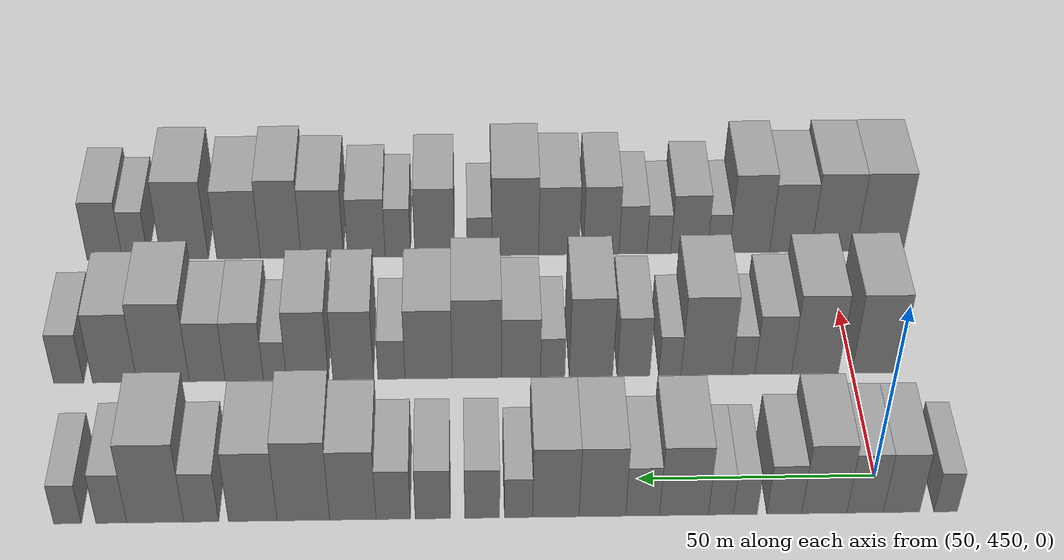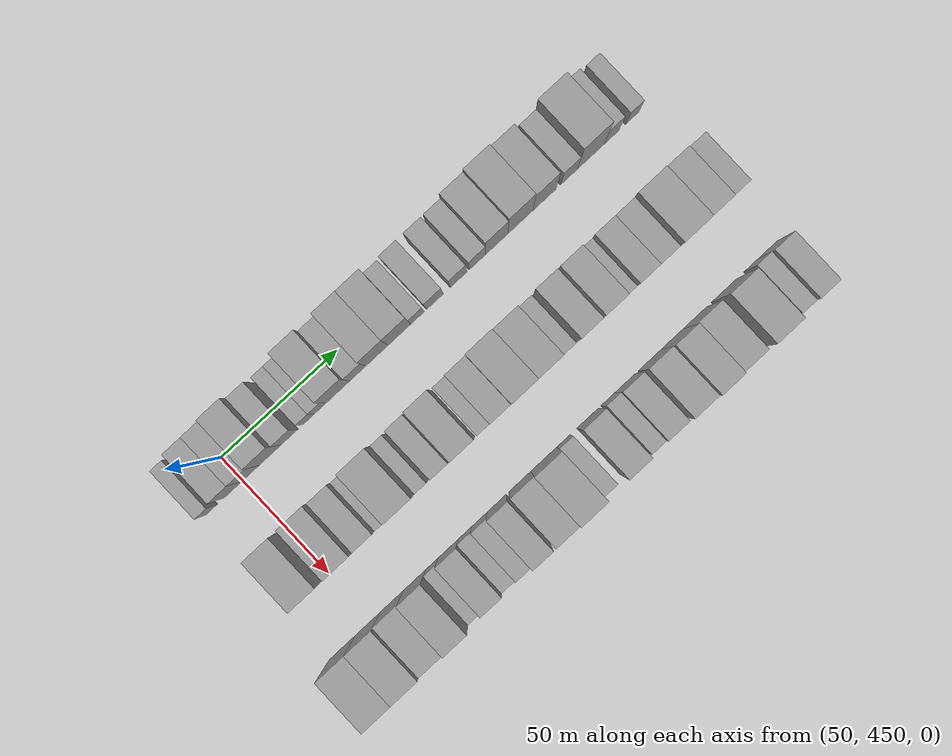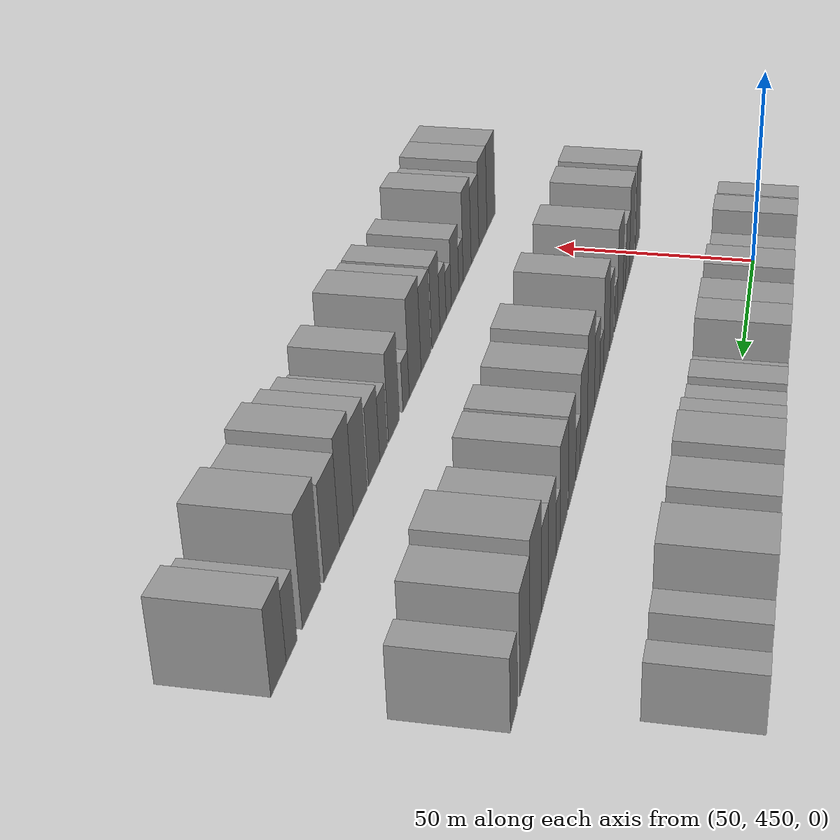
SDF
<sdf version="1.6">
 <world name="default">
  <model name="building_109">
   <static>1</static>
   <pose>50.0000 436.7287 0 0.000000 0.000000 0.000000</pose>
   <link name="link">
    <pose>0 0 6.00 0 0 0</pose>
    <collision name="collision"><geometry><box><size>20.0000 4.8754 12.0000</size></box></geometry></collision>
    <visual name="visual">
     <cast_shadows>0</cast_shadows>
     <geometry><box><size>20.0000 4.8754 12.0000</size></box></geometry>
     <material>
      <script>
       <uri>model://grey_wall/materials/scripts</uri>
       <uri>model://grey_wall/materials/textures</uri>
       <name>vrc/grey_wall</name>
      </script>
     </material>
    </visual>
   </link>
  </model>
  <model name="building_110">
   <static>1</static>
   <pose>50.0000 445.9561 0 0.000000 0.000000 0.000000</pose>
   <link name="link">
    <pose>0 0 9.00 0 0 0</pose>
    <collision name="collision"><geometry><box><size>20.0000 7.5793 18.0000</size></box></geometry></collision>
    <visual name="visual">
     <cast_shadows>0</cast_shadows>
     <geometry><box><size>20.0000 7.5793 18.0000</size></box></geometry>
     <material>
      <script>
       <uri>model://grey_wall/materials/scripts</uri>
       <uri>model://grey_wall/materials/textures</uri>
       <name>vrc/grey_wall</name>
      </script>
     </material>
    </visual>
   </link>
  </model>
  <model name="building_111">
   <static>1</static>
   <pose>50.0000 453.5369 0 0.000000 0.000000 0.000000</pose>
   <link name="link">
    <pose>0 0 9.00 0 0 0</pose>
    <collision name="collision"><geometry><box><size>20.0000 7.5823 18.0000</size></box></geometry></collision>
    <visual name="visual">
     <cast_shadows>0</cast_shadows>
     <geometry><box><size>20.0000 7.5823 18.0000</size></box></geometry>
     <material>
      <script>
       <uri>model://grey_wall/materials/scripts</uri>
       <uri>model://grey_wall/materials/textures</uri>
       <name>vrc/grey_wall</name>
      </script>
     </material>
    </visual>
   </link>
  </model>
  <model name="building_112">
   <static>1</static>
   <pose>50.0000 462.0447 0 0.000000 0.000000 0.000000</pose>
   <link name="link">
    <pose>0 0 10.50 0 0 0</pose>
    <collision name="collision"><geometry><box><size>20.0000 9.4333 21.0000</size></box></geometry></collision>
    <visual name="visual">
     <cast_shadows>0</cast_shadows>
     <geometry><box><size>20.0000 9.4333 21.0000</size></box></geometry>
     <material>
      <script>
       <uri>model://grey_wall/materials/scripts</uri>
       <uri>model://grey_wall/materials/textures</uri>
       <name>vrc/grey_wall</name>
      </script>
     </material>
    </visual>
   </link>
  </model>
  <model name="building_113">
   <static>1</static>
   <pose>50.0000 470.3872 0 0.000000 0.000000 0.000000</pose>
   <link name="link">
    <pose>0 0 7.50 0 0 0</pose>
    <collision name="collision"><geometry><box><size>20.0000 7.2516 15.0000</size></box></geometry></collision>
    <visual name="visual">
     <cast_shadows>0</cast_shadows>
     <geometry><box><size>20.0000 7.2516 15.0000</size></box></geometry>
     <material>
      <script>
       <uri>model://grey_wall/materials/scripts</uri>
       <uri>model://grey_wall/materials/textures</uri>
       <name>vrc/grey_wall</name>
      </script>
     </material>
    </visual>
   </link>
  </model>
  <model name="building_114">
   <static>1</static>
   <pose>50.0000 478.5228 0 0.000000 0.000000 0.000000</pose>
   <link name="link">
    <pose>0 0 6.00 0 0 0</pose>
    <collision name="collision"><geometry><box><size>20.0000 5.0196 12.0000</size></box></geometry></collision>
    <visual name="visual">
     <cast_shadows>0</cast_shadows>
     <geometry><box><size>20.0000 5.0196 12.0000</size></box></geometry>
     <material>
      <script>
       <uri>model://grey_wall/materials/scripts</uri>
       <uri>model://grey_wall/materials/textures</uri>
       <name>vrc/grey_wall</name>
      </script>
     </material>
    </visual>
   </link>
  </model>
  <model name="building_115">
   <static>1</static>
   <pose>50.0000 483.6006 0 0.000000 0.000000 0.000000</pose>
   <link name="link">
    <pose>0 0 6.00 0 0 0</pose>
    <collision name="collision"><geometry><box><size>20.0000 5.1360 12.0000</size></box></geometry></collision>
    <visual name="visual">
     <cast_shadows>0</cast_shadows>
     <geometry><box><size>20.0000 5.1360 12.0000</size></box></geometry>
     <material>
      <script>
       <uri>model://grey_wall/materials/scripts</uri>
       <uri>model://grey_wall/materials/textures</uri>
       <name>vrc/grey_wall</name>
      </script>
     </material>
    </visual>
   </link>
  </model>
  <model name="building_116">
   <static>1</static>
   <pose>50.0000 491.2625 0 0.000000 0.000000 0.000000</pose>
   <link name="link">
    <pose>0 0 10.50 0 0 0</pose>
    <collision name="collision"><geometry><box><size>20.0000 10.1878 21.0000</size></box></geometry></collision>
    <visual name="visual">
     <cast_shadows>0</cast_shadows>
     <geometry><box><size>20.0000 10.1878 21.0000</size></box></geometry>
     <material>
      <script>
       <uri>model://grey_wall/materials/scripts</uri>
       <uri>model://grey_wall/materials/textures</uri>
       <name>vrc/grey_wall</name>
      </script>
     </material>
    </visual>
   </link>
  </model>
  <model name="building_117">
   <static>1</static>
   <pose>50.0000 499.8749 0 0.000000 0.000000 0.000000</pose>
   <link name="link">
    <pose>0 0 7.50 0 0 0</pose>
    <collision name="collision"><geometry><box><size>20.0000 7.0372 15.0000</size></box></geometry></collision>
    <visual name="visual">
     <cast_shadows>0</cast_shadows>
     <geometry><box><size>20.0000 7.0372 15.0000</size></box></geometry>
     <material>
      <script>
       <uri>model://grey_wall/materials/scripts</uri>
       <uri>model://grey_wall/materials/textures</uri>
       <name>vrc/grey_wall</name>
      </script>
     </material>
    </visual>
   </link>
  </model>
  <model name="building_118">
   <static>1</static>
   <pose>50.0000 508.2300 0 0.000000 0.000000 0.000000</pose>
   <link name="link">
    <pose>0 0 10.50 0 0 0</pose>
    <collision name="collision"><geometry><box><size>20.0000 9.6730 21.0000</size></box></geometry></collision>
    <visual name="visual">
     <cast_shadows>0</cast_shadows>
     <geometry><box><size>20.0000 9.6730 21.0000</size></box></geometry>
     <material>
      <script>
       <uri>model://grey_wall/materials/scripts</uri>
       <uri>model://grey_wall/materials/textures</uri>
       <name>vrc/grey_wall</name>
      </script>
     </material>
    </visual>
   </link>
  </model>
  <model name="building_119">
   <static>1</static>
   <pose>50.0000 517.9013 0 0.000000 0.000000 0.000000</pose>
   <link name="link">
    <pose>0 0 10.50 0 0 0</pose>
    <collision name="collision"><geometry><box><size>20.0000 9.6695 21.0000</size></box></geometry></collision>
    <visual name="visual">
     <cast_shadows>0</cast_shadows>
     <geometry><box><size>20.0000 9.6695 21.0000</size></box></geometry>
     <material>
      <script>
       <uri>model://grey_wall/materials/scripts</uri>
       <uri>model://grey_wall/materials/textures</uri>
       <name>vrc/grey_wall</name>
      </script>
     </material>
    </visual>
   </link>
  </model>
  <model name="building_120">
   <static>1</static>
   <pose>50.0000 525.6360 0 0.000000 0.000000 0.000000</pose>
   <link name="link">
    <pose>0 0 6.00 0 0 0</pose>
    <collision name="collision"><geometry><box><size>20.0000 5.7998 12.0000</size></box></geometry></collision>
    <visual name="visual">
     <cast_shadows>0</cast_shadows>
     <geometry><box><size>20.0000 5.7998 12.0000</size></box></geometry>
     <material>
      <script>
       <uri>model://grey_wall/materials/scripts</uri>
       <uri>model://grey_wall/materials/textures</uri>
       <name>vrc/grey_wall</name>
      </script>
     </material>
    </visual>
   </link>
  </model>
  <model name="building_121">
   <static>1</static>
   <pose>50.0000 533.1571 0 0.000000 0.000000 0.000000</pose>
   <link name="link">
    <pose>0 0 7.50 0 0 0</pose>
    <collision name="collision"><geometry><box><size>20.0000 7.2424 15.0000</size></box></geometry></collision>
    <visual name="visual">
     <cast_shadows>0</cast_shadows>
     <geometry><box><size>20.0000 7.2424 15.0000</size></box></geometry>
     <material>
      <script>
       <uri>model://grey_wall/materials/scripts</uri>
       <uri>model://grey_wall/materials/textures</uri>
       <name>vrc/grey_wall</name>
      </script>
     </material>
    </visual>
   </link>
  </model>
  <model name="building_122">
   <static>1</static>
   <pose>50.0000 543.4093 0 0.000000 0.000000 0.000000</pose>
   <link name="link">
    <pose>0 0 7.50 0 0 0</pose>
    <collision name="collision"><geometry><box><size>20.0000 7.2619 15.0000</size></box></geometry></collision>
    <visual name="visual">
     <cast_shadows>0</cast_shadows>
     <geometry><box><size>20.0000 7.2619 15.0000</size></box></geometry>
     <material>
      <script>
       <uri>model://grey_wall/materials/scripts</uri>
       <uri>model://grey_wall/materials/textures</uri>
       <name>vrc/grey_wall</name>
      </script>
     </material>
    </visual>
   </link>
  </model>
  <model name="building_123">
   <static>1</static>
   <pose>50.0000 551.6006 0 0.000000 0.000000 0.000000</pose>
   <link name="link">
    <pose>0 0 7.50 0 0 0</pose>
    <collision name="collision"><geometry><box><size>20.0000 7.1207 15.0000</size></box></geometry></collision>
    <visual name="visual">
     <cast_shadows>0</cast_shadows>
     <geometry><box><size>20.0000 7.1207 15.0000</size></box></geometry>
     <material>
      <script>
       <uri>model://grey_wall/materials/scripts</uri>
       <uri>model://grey_wall/materials/textures</uri>
       <name>vrc/grey_wall</name>
      </script>
     </material>
    </visual>
   </link>
  </model>
  <model name="building_124">
   <static>1</static>
   <pose>50.0000 559.9631 0 0.000000 0.000000 0.000000</pose>
   <link name="link">
    <pose>0 0 10.50 0 0 0</pose>
    <collision name="collision"><geometry><box><size>20.0000 9.6043 21.0000</size></box></geometry></collision>
    <visual name="visual">
     <cast_shadows>0</cast_shadows>
     <geometry><box><size>20.0000 9.6043 21.0000</size></box></geometry>
     <material>
      <script>
       <uri>model://grey_wall/materials/scripts</uri>
       <uri>model://grey_wall/materials/textures</uri>
       <name>vrc/grey_wall</name>
      </script>
     </material>
    </visual>
   </link>
  </model>
  <model name="building_125">
   <static>1</static>
   <pose>50.0000 570.2019 0 0.000000 0.000000 0.000000</pose>
   <link name="link">
    <pose>0 0 12.00 0 0 0</pose>
    <collision name="collision"><geometry><box><size>20.0000 10.8734 24.0000</size></box></geometry></collision>
    <visual name="visual">
     <cast_shadows>0</cast_shadows>
     <geometry><box><size>20.0000 10.8734 24.0000</size></box></geometry>
     <material>
      <script>
       <uri>model://grey_wall/materials/scripts</uri>
       <uri>model://grey_wall/materials/textures</uri>
       <name>vrc/grey_wall</name>
      </script>
     </material>
    </visual>
   </link>
  </model>
  <model name="building_126">
   <static>1</static>
   <pose>50.0000 580.6736 0 0.000000 0.000000 0.000000</pose>
   <link name="link">
    <pose>0 0 10.50 0 0 0</pose>
    <collision name="collision"><geometry><box><size>20.0000 10.0700 21.0000</size></box></geometry></collision>
    <visual name="visual">
     <cast_shadows>0</cast_shadows>
     <geometry><box><size>20.0000 10.0700 21.0000</size></box></geometry>
     <material>
      <script>
       <uri>model://grey_wall/materials/scripts</uri>
       <uri>model://grey_wall/materials/textures</uri>
       <name>vrc/grey_wall</name>
      </script>
     </material>
    </visual>
   </link>
  </model>
  <model name="building_127">
   <static>1</static>
   <pose>50.0000 591.2926 0 0.000000 0.000000 0.000000</pose>
   <link name="link">
    <pose>0 0 7.50 0 0 0</pose>
    <collision name="collision"><geometry><box><size>20.0000 7.1679 15.0000</size></box></geometry></collision>
    <visual name="visual">
     <cast_shadows>0</cast_shadows>
     <geometry><box><size>20.0000 7.1679 15.0000</size></box></geometry>
     <material>
      <script>
       <uri>model://grey_wall/materials/scripts</uri>
       <uri>model://grey_wall/materials/textures</uri>
       <name>vrc/grey_wall</name>
      </script>
     </material>
    </visual>
   </link>
  </model>
  <model name="building_128">
   <static>1</static>
   <pose>50.0000 600.7836 0 0.000000 0.000000 0.000000</pose>
   <link name="link">
    <pose>0 0 12.00 0 0 0</pose>
    <collision name="collision"><geometry><box><size>20.0000 11.8140 24.0000</size></box></geometry></collision>
    <visual name="visual">
     <cast_shadows>0</cast_shadows>
     <geometry><box><size>20.0000 11.8140 24.0000</size></box></geometry>
     <material>
      <script>
       <uri>model://grey_wall/materials/scripts</uri>
       <uri>model://grey_wall/materials/textures</uri>
       <name>vrc/grey_wall</name>
      </script>
     </material>
    </visual>
   </link>
  </model>
  <model name="building_129">
   <static>1</static>
   <pose>50.0000 609.8811 0 0.000000 0.000000 0.000000</pose>
   <link name="link">
    <pose>0 0 7.50 0 0 0</pose>
    <collision name="collision"><geometry><box><size>20.0000 6.3809 15.0000</size></box></geometry></collision>
    <visual name="visual">
     <cast_shadows>0</cast_shadows>
     <geometry><box><size>20.0000 6.3809 15.0000</size></box></geometry>
     <material>
      <script>
       <uri>model://grey_wall/materials/scripts</uri>
       <uri>model://grey_wall/materials/textures</uri>
       <name>vrc/grey_wall</name>
      </script>
     </material>
    </visual>
   </link>
  </model>
  <model name="building_130">
   <static>1</static>
   <pose>50.0000 618.9133 0 0.000000 0.000000 0.000000</pose>
   <link name="link">
    <pose>0 0 6.00 0 0 0</pose>
    <collision name="collision"><geometry><box><size>20.0000 5.6835 12.0000</size></box></geometry></collision>
    <visual name="visual">
     <cast_shadows>0</cast_shadows>
     <geometry><box><size>20.0000 5.6835 12.0000</size></box></geometry>
     <material>
      <script>
       <uri>model://grey_wall/materials/scripts</uri>
       <uri>model://grey_wall/materials/textures</uri>
       <name>vrc/grey_wall</name>
      </script>
     </material>
    </visual>
   </link>
  </model>
  <model name="building_248">
   <static>1</static>
   <pose>90.0000 444.8565 0 0.000000 0.000000 0.000000</pose>
   <link name="link">
    <pose>0 0 12.00 0 0 0</pose>
    <collision name="collision"><geometry><box><size>20.0000 10.5984 24.0000</size></box></geometry></collision>
    <visual name="visual">
     <cast_shadows>0</cast_shadows>
     <geometry><box><size>20.0000 10.5984 24.0000</size></box></geometry>
     <material>
      <script>
       <uri>model://grey_wall/materials/scripts</uri>
       <uri>model://grey_wall/materials/textures</uri>
       <name>vrc/grey_wall</name>
      </script>
     </material>
    </visual>
   </link>
  </model>
  <model name="building_249">
   <static>1</static>
   <pose>90.0000 458.4073 0 0.000000 0.000000 0.000000</pose>
   <link name="link">
    <pose>0 0 12.00 0 0 0</pose>
    <collision name="collision"><geometry><box><size>20.0000 10.5032 24.0000</size></box></geometry></collision>
    <visual name="visual">
     <cast_shadows>0</cast_shadows>
     <geometry><box><size>20.0000 10.5032 24.0000</size></box></geometry>
     <material>
      <script>
       <uri>model://grey_wall/materials/scripts</uri>
       <uri>model://grey_wall/materials/textures</uri>
       <name>vrc/grey_wall</name>
      </script>
     </material>
    </visual>
   </link>
  </model>
  <model name="building_250">
   <static>1</static>
   <pose>90.0000 467.7437 0 0.000000 0.000000 0.000000</pose>
   <link name="link">
    <pose>0 0 9.00 0 0 0</pose>
    <collision name="collision"><geometry><box><size>20.0000 8.1696 18.0000</size></box></geometry></collision>
    <visual name="visual">
     <cast_shadows>0</cast_shadows>
     <geometry><box><size>20.0000 8.1696 18.0000</size></box></geometry>
     <material>
      <script>
       <uri>model://grey_wall/materials/scripts</uri>
       <uri>model://grey_wall/materials/textures</uri>
       <name>vrc/grey_wall</name>
      </script>
     </material>
    </visual>
   </link>
  </model>
  <model name="building_251">
   <static>1</static>
   <pose>90.0000 474.4030 0 0.000000 0.000000 0.000000</pose>
   <link name="link">
    <pose>0 0 6.00 0 0 0</pose>
    <collision name="collision"><geometry><box><size>20.0000 5.1491 12.0000</size></box></geometry></collision>
    <visual name="visual">
     <cast_shadows>0</cast_shadows>
     <geometry><box><size>20.0000 5.1491 12.0000</size></box></geometry>
     <material>
      <script>
       <uri>model://grey_wall/materials/scripts</uri>
       <uri>model://grey_wall/materials/textures</uri>
       <name>vrc/grey_wall</name>
      </script>
     </material>
    </visual>
   </link>
  </model>
  <model name="building_252">
   <static>1</static>
   <pose>90.0000 482.6559 0 0.000000 0.000000 0.000000</pose>
   <link name="link">
    <pose>0 0 12.00 0 0 0</pose>
    <collision name="collision"><geometry><box><size>20.0000 11.3567 24.0000</size></box></geometry></collision>
    <visual name="visual">
     <cast_shadows>0</cast_shadows>
     <geometry><box><size>20.0000 11.3567 24.0000</size></box></geometry>
     <material>
      <script>
       <uri>model://grey_wall/materials/scripts</uri>
       <uri>model://grey_wall/materials/textures</uri>
       <name>vrc/grey_wall</name>
      </script>
     </material>
    </visual>
   </link>
  </model>
  <model name="building_253">
   <static>1</static>
   <pose>90.0000 490.8058 0 0.000000 0.000000 0.000000</pose>
   <link name="link">
    <pose>0 0 6.00 0 0 0</pose>
    <collision name="collision"><geometry><box><size>20.0000 4.9433 12.0000</size></box></geometry></collision>
    <visual name="visual">
     <cast_shadows>0</cast_shadows>
     <geometry><box><size>20.0000 4.9433 12.0000</size></box></geometry>
     <material>
      <script>
       <uri>model://grey_wall/materials/scripts</uri>
       <uri>model://grey_wall/materials/textures</uri>
       <name>vrc/grey_wall</name>
      </script>
     </material>
    </visual>
   </link>
  </model>
  <model name="building_254">
   <static>1</static>
   <pose>90.0000 498.9172 0 0.000000 0.000000 0.000000</pose>
   <link name="link">
    <pose>0 0 9.00 0 0 0</pose>
    <collision name="collision"><geometry><box><size>20.0000 7.2795 18.0000</size></box></geometry></collision>
    <visual name="visual">
     <cast_shadows>0</cast_shadows>
     <geometry><box><size>20.0000 7.2795 18.0000</size></box></geometry>
     <material>
      <script>
       <uri>model://grey_wall/materials/scripts</uri>
       <uri>model://grey_wall/materials/textures</uri>
       <name>vrc/grey_wall</name>
      </script>
     </material>
    </visual>
   </link>
  </model>
  <model name="building_255">
   <static>1</static>
   <pose>90.0000 508.4036 0 0.000000 0.000000 0.000000</pose>
   <link name="link">
    <pose>0 0 12.00 0 0 0</pose>
    <collision name="collision"><geometry><box><size>20.0000 9.6932 24.0000</size></box></geometry></collision>
    <visual name="visual">
     <cast_shadows>0</cast_shadows>
     <geometry><box><size>20.0000 9.6932 24.0000</size></box></geometry>
     <material>
      <script>
       <uri>model://grey_wall/materials/scripts</uri>
       <uri>model://grey_wall/materials/textures</uri>
       <name>vrc/grey_wall</name>
      </script>
     </material>
    </visual>
   </link>
  </model>
  <model name="building_256">
   <static>1</static>
   <pose>90.0000 516.9651 0 0.000000 0.000000 0.000000</pose>
   <link name="link">
    <pose>0 0 6.00 0 0 0</pose>
    <collision name="collision"><geometry><box><size>20.0000 5.4298 12.0000</size></box></geometry></collision>
    <visual name="visual">
     <cast_shadows>0</cast_shadows>
     <geometry><box><size>20.0000 5.4298 12.0000</size></box></geometry>
     <material>
      <script>
       <uri>model://grey_wall/materials/scripts</uri>
       <uri>model://grey_wall/materials/textures</uri>
       <name>vrc/grey_wall</name>
      </script>
     </material>
    </visual>
   </link>
  </model>
  <model name="building_257">
   <static>1</static>
   <pose>90.0000 524.0116 0 0.000000 0.000000 0.000000</pose>
   <link name="link">
    <pose>0 0 9.00 0 0 0</pose>
    <collision name="collision"><geometry><box><size>20.0000 8.6632 18.0000</size></box></geometry></collision>
    <visual name="visual">
     <cast_shadows>0</cast_shadows>
     <geometry><box><size>20.0000 8.6632 18.0000</size></box></geometry>
     <material>
      <script>
       <uri>model://grey_wall/materials/scripts</uri>
       <uri>model://grey_wall/materials/textures</uri>
       <name>vrc/grey_wall</name>
      </script>
     </material>
    </visual>
   </link>
  </model>
  <model name="building_258">
   <static>1</static>
   <pose>90.0000 533.8277 0 0.000000 0.000000 0.000000</pose>
   <link name="link">
    <pose>0 0 12.00 0 0 0</pose>
    <collision name="collision"><geometry><box><size>20.0000 10.9690 24.0000</size></box></geometry></collision>
    <visual name="visual">
     <cast_shadows>0</cast_shadows>
     <geometry><box><size>20.0000 10.9690 24.0000</size></box></geometry>
     <material>
      <script>
       <uri>model://grey_wall/materials/scripts</uri>
       <uri>model://grey_wall/materials/textures</uri>
       <name>vrc/grey_wall</name>
      </script>
     </material>
    </visual>
   </link>
  </model>
  <model name="building_259">
   <static>1</static>
   <pose>90.0000 544.5603 0 0.000000 0.000000 0.000000</pose>
   <link name="link">
    <pose>0 0 10.50 0 0 0</pose>
    <collision name="collision"><geometry><box><size>20.0000 10.4961 21.0000</size></box></geometry></collision>
    <visual name="visual">
     <cast_shadows>0</cast_shadows>
     <geometry><box><size>20.0000 10.4961 21.0000</size></box></geometry>
     <material>
      <script>
       <uri>model://grey_wall/materials/scripts</uri>
       <uri>model://grey_wall/materials/textures</uri>
       <name>vrc/grey_wall</name>
      </script>
     </material>
    </visual>
   </link>
  </model>
  <model name="building_260">
   <static>1</static>
   <pose>90.0000 552.7948 0 0.000000 0.000000 0.000000</pose>
   <link name="link">
    <pose>0 0 6.00 0 0 0</pose>
    <collision name="collision"><geometry><box><size>20.0000 5.9730 12.0000</size></box></geometry></collision>
    <visual name="visual">
     <cast_shadows>0</cast_shadows>
     <geometry><box><size>20.0000 5.9730 12.0000</size></box></geometry>
     <material>
      <script>
       <uri>model://grey_wall/materials/scripts</uri>
       <uri>model://grey_wall/materials/textures</uri>
       <name>vrc/grey_wall</name>
      </script>
     </material>
    </visual>
   </link>
  </model>
  <model name="building_261">
   <static>1</static>
   <pose>90.0000 561.2911 0 0.000000 0.000000 0.000000</pose>
   <link name="link">
    <pose>0 0 10.50 0 0 0</pose>
    <collision name="collision"><geometry><box><size>20.0000 9.0195 21.0000</size></box></geometry></collision>
    <visual name="visual">
     <cast_shadows>0</cast_shadows>
     <geometry><box><size>20.0000 9.0195 21.0000</size></box></geometry>
     <material>
      <script>
       <uri>model://grey_wall/materials/scripts</uri>
       <uri>model://grey_wall/materials/textures</uri>
       <name>vrc/grey_wall</name>
      </script>
     </material>
    </visual>
   </link>
  </model>
  <model name="building_262">
   <static>1</static>
   <pose>90.0000 571.4587 0 0.000000 0.000000 0.000000</pose>
   <link name="link">
    <pose>0 0 10.50 0 0 0</pose>
    <collision name="collision"><geometry><box><size>20.0000 9.3157 21.0000</size></box></geometry></collision>
    <visual name="visual">
     <cast_shadows>0</cast_shadows>
     <geometry><box><size>20.0000 9.3157 21.0000</size></box></geometry>
     <material>
      <script>
       <uri>model://grey_wall/materials/scripts</uri>
       <uri>model://grey_wall/materials/textures</uri>
       <name>vrc/grey_wall</name>
      </script>
     </material>
    </visual>
   </link>
  </model>
  <model name="building_263">
   <static>1</static>
   <pose>90.0000 578.6727 0 0.000000 0.000000 0.000000</pose>
   <link name="link">
    <pose>0 0 6.00 0 0 0</pose>
    <collision name="collision"><geometry><box><size>20.0000 5.1123 12.0000</size></box></geometry></collision>
    <visual name="visual">
     <cast_shadows>0</cast_shadows>
     <geometry><box><size>20.0000 5.1123 12.0000</size></box></geometry>
     <material>
      <script>
       <uri>model://grey_wall/materials/scripts</uri>
       <uri>model://grey_wall/materials/textures</uri>
       <name>vrc/grey_wall</name>
      </script>
     </material>
    </visual>
   </link>
  </model>
  <model name="building_264">
   <static>1</static>
   <pose>90.0000 585.4815 0 0.000000 0.000000 0.000000</pose>
   <link name="link">
    <pose>0 0 9.00 0 0 0</pose>
    <collision name="collision"><geometry><box><size>20.0000 8.5053 18.0000</size></box></geometry></collision>
    <visual name="visual">
     <cast_shadows>0</cast_shadows>
     <geometry><box><size>20.0000 8.5053 18.0000</size></box></geometry>
     <material>
      <script>
       <uri>model://grey_wall/materials/scripts</uri>
       <uri>model://grey_wall/materials/textures</uri>
       <name>vrc/grey_wall</name>
      </script>
     </material>
    </visual>
   </link>
  </model>
  <model name="building_265">
   <static>1</static>
   <pose>90.0000 593.7122 0 0.000000 0.000000 0.000000</pose>
   <link name="link">
    <pose>0 0 9.00 0 0 0</pose>
    <collision name="collision"><geometry><box><size>20.0000 7.9563 18.0000</size></box></geometry></collision>
    <visual name="visual">
     <cast_shadows>0</cast_shadows>
     <geometry><box><size>20.0000 7.9563 18.0000</size></box></geometry>
     <material>
      <script>
       <uri>model://grey_wall/materials/scripts</uri>
       <uri>model://grey_wall/materials/textures</uri>
       <name>vrc/grey_wall</name>
      </script>
     </material>
    </visual>
   </link>
  </model>
  <model name="building_266">
   <static>1</static>
   <pose>90.0000 603.5068 0 0.000000 0.000000 0.000000</pose>
   <link name="link">
    <pose>0 0 12.00 0 0 0</pose>
    <collision name="collision"><geometry><box><size>20.0000 11.6327 24.0000</size></box></geometry></collision>
    <visual name="visual">
     <cast_shadows>0</cast_shadows>
     <geometry><box><size>20.0000 11.6327 24.0000</size></box></geometry>
     <material>
      <script>
       <uri>model://grey_wall/materials/scripts</uri>
       <uri>model://grey_wall/materials/textures</uri>
       <name>vrc/grey_wall</name>
      </script>
     </material>
    </visual>
   </link>
  </model>
  <model name="building_267">
   <static>1</static>
   <pose>90.0000 614.2384 0 0.000000 0.000000 0.000000</pose>
   <link name="link">
    <pose>0 0 10.50 0 0 0</pose>
    <collision name="collision"><geometry><box><size>20.0000 9.8306 21.0000</size></box></geometry></collision>
    <visual name="visual">
     <cast_shadows>0</cast_shadows>
     <geometry><box><size>20.0000 9.8306 21.0000</size></box></geometry>
     <material>
      <script>
       <uri>model://grey_wall/materials/scripts</uri>
       <uri>model://grey_wall/materials/textures</uri>
       <name>vrc/grey_wall</name>
      </script>
     </material>
    </visual>
   </link>
  </model>
  <model name="building_268">
   <static>1</static>
   <pose>90.0000 624.4491 0 0.000000 0.000000 0.000000</pose>
   <link name="link">
    <pose>0 0 7.50 0 0 0</pose>
    <collision name="collision"><geometry><box><size>20.0000 6.5906 15.0000</size></box></geometry></collision>
    <visual name="visual">
     <cast_shadows>0</cast_shadows>
     <geometry><box><size>20.0000 6.5906 15.0000</size></box></geometry>
     <material>
      <script>
       <uri>model://grey_wall/materials/scripts</uri>
       <uri>model://grey_wall/materials/textures</uri>
       <name>vrc/grey_wall</name>
      </script>
     </material>
    </visual>
   </link>
  </model>
  <model name="building_388">
   <static>1</static>
   <pose>130.0000 437.2520 0 0.000000 0.000000 0.000000</pose>
   <link name="link">
    <pose>0 0 12.00 0 0 0</pose>
    <collision name="collision"><geometry><box><size>20.0000 11.4298 24.0000</size></box></geometry></collision>
    <visual name="visual">
     <cast_shadows>0</cast_shadows>
     <geometry><box><size>20.0000 11.4298 24.0000</size></box></geometry>
     <material>
      <script>
       <uri>model://grey_wall/materials/scripts</uri>
       <uri>model://grey_wall/materials/textures</uri>
       <name>vrc/grey_wall</name>
      </script>
     </material>
    </visual>
   </link>
  </model>
  <model name="building_389">
   <static>1</static>
   <pose>130.0000 448.3407 0 0.000000 0.000000 0.000000</pose>
   <link name="link">
    <pose>0 0 12.00 0 0 0</pose>
    <collision name="collision"><geometry><box><size>20.0000 10.7475 24.0000</size></box></geometry></collision>
    <visual name="visual">
     <cast_shadows>0</cast_shadows>
     <geometry><box><size>20.0000 10.7475 24.0000</size></box></geometry>
     <material>
      <script>
       <uri>model://grey_wall/materials/scripts</uri>
       <uri>model://grey_wall/materials/textures</uri>
       <name>vrc/grey_wall</name>
      </script>
     </material>
    </visual>
   </link>
  </model>
  <model name="building_390">
   <static>1</static>
   <pose>130.0000 458.6576 0 0.000000 0.000000 0.000000</pose>
   <link name="link">
    <pose>0 0 10.50 0 0 0</pose>
    <collision name="collision"><geometry><box><size>20.0000 9.8865 21.0000</size></box></geometry></collision>
    <visual name="visual">
     <cast_shadows>0</cast_shadows>
     <geometry><box><size>20.0000 9.8865 21.0000</size></box></geometry>
     <material>
      <script>
       <uri>model://grey_wall/materials/scripts</uri>
       <uri>model://grey_wall/materials/textures</uri>
       <name>vrc/grey_wall</name>
      </script>
     </material>
    </visual>
   </link>
  </model>
  <model name="building_391">
   <static>1</static>
   <pose>130.0000 468.4294 0 0.000000 0.000000 0.000000</pose>
   <link name="link">
    <pose>0 0 12.00 0 0 0</pose>
    <collision name="collision"><geometry><box><size>20.0000 9.6571 24.0000</size></box></geometry></collision>
    <visual name="visual">
     <cast_shadows>0</cast_shadows>
     <geometry><box><size>20.0000 9.6571 24.0000</size></box></geometry>
     <material>
      <script>
       <uri>model://grey_wall/materials/scripts</uri>
       <uri>model://grey_wall/materials/textures</uri>
       <name>vrc/grey_wall</name>
      </script>
     </material>
    </visual>
   </link>
  </model>
  <model name="building_392">
   <static>1</static>
   <pose>130.0000 475.8567 0 0.000000 0.000000 0.000000</pose>
   <link name="link">
    <pose>0 0 6.00 0 0 0</pose>
    <collision name="collision"><geometry><box><size>20.0000 5.1975 12.0000</size></box></geometry></collision>
    <visual name="visual">
     <cast_shadows>0</cast_shadows>
     <geometry><box><size>20.0000 5.1975 12.0000</size></box></geometry>
     <material>
      <script>
       <uri>model://grey_wall/materials/scripts</uri>
       <uri>model://grey_wall/materials/textures</uri>
       <name>vrc/grey_wall</name>
      </script>
     </material>
    </visual>
   </link>
  </model>
  <model name="building_393">
   <static>1</static>
   <pose>130.0000 482.8201 0 0.000000 0.000000 0.000000</pose>
   <link name="link">
    <pose>0 0 9.00 0 0 0</pose>
    <collision name="collision"><geometry><box><size>20.0000 8.7292 18.0000</size></box></geometry></collision>
    <visual name="visual">
     <cast_shadows>0</cast_shadows>
     <geometry><box><size>20.0000 8.7292 18.0000</size></box></geometry>
     <material>
      <script>
       <uri>model://grey_wall/materials/scripts</uri>
       <uri>model://grey_wall/materials/textures</uri>
       <name>vrc/grey_wall</name>
      </script>
     </material>
    </visual>
   </link>
  </model>
  <model name="building_394">
   <static>1</static>
   <pose>130.0000 490.0511 0 0.000000 0.000000 0.000000</pose>
   <link name="link">
    <pose>0 0 6.00 0 0 0</pose>
    <collision name="collision"><geometry><box><size>20.0000 5.7328 12.0000</size></box></geometry></collision>
    <visual name="visual">
     <cast_shadows>0</cast_shadows>
     <geometry><box><size>20.0000 5.7328 12.0000</size></box></geometry>
     <material>
      <script>
       <uri>model://grey_wall/materials/scripts</uri>
       <uri>model://grey_wall/materials/textures</uri>
       <name>vrc/grey_wall</name>
      </script>
     </material>
    </visual>
   </link>
  </model>
  <model name="building_395">
   <static>1</static>
   <pose>130.0000 496.2345 0 0.000000 0.000000 0.000000</pose>
   <link name="link">
    <pose>0 0 7.50 0 0 0</pose>
    <collision name="collision"><geometry><box><size>20.0000 6.6340 15.0000</size></box></geometry></collision>
    <visual name="visual">
     <cast_shadows>0</cast_shadows>
     <geometry><box><size>20.0000 6.6340 15.0000</size></box></geometry>
     <material>
      <script>
       <uri>model://grey_wall/materials/scripts</uri>
       <uri>model://grey_wall/materials/textures</uri>
       <name>vrc/grey_wall</name>
      </script>
     </material>
    </visual>
   </link>
  </model>
  <model name="building_396">
   <static>1</static>
   <pose>130.0000 503.7884 0 0.000000 0.000000 0.000000</pose>
   <link name="link">
    <pose>0 0 10.50 0 0 0</pose>
    <collision name="collision"><geometry><box><size>20.0000 8.4738 21.0000</size></box></geometry></collision>
    <visual name="visual">
     <cast_shadows>0</cast_shadows>
     <geometry><box><size>20.0000 8.4738 21.0000</size></box></geometry>
     <material>
      <script>
       <uri>model://grey_wall/materials/scripts</uri>
       <uri>model://grey_wall/materials/textures</uri>
       <name>vrc/grey_wall</name>
      </script>
     </material>
    </visual>
   </link>
  </model>
  <model name="building_397">
   <static>1</static>
   <pose>130.0000 513.8648 0 0.000000 0.000000 0.000000</pose>
   <link name="link">
    <pose>0 0 10.50 0 0 0</pose>
    <collision name="collision"><geometry><box><size>20.0000 9.6791 21.0000</size></box></geometry></collision>
    <visual name="visual">
     <cast_shadows>0</cast_shadows>
     <geometry><box><size>20.0000 9.6791 21.0000</size></box></geometry>
     <material>
      <script>
       <uri>model://grey_wall/materials/scripts</uri>
       <uri>model://grey_wall/materials/textures</uri>
       <name>vrc/grey_wall</name>
      </script>
     </material>
    </visual>
   </link>
  </model>
  <model name="building_398">
   <static>1</static>
   <pose>130.0000 524.2824 0 0.000000 0.000000 0.000000</pose>
   <link name="link">
    <pose>0 0 12.00 0 0 0</pose>
    <collision name="collision"><geometry><box><size>20.0000 11.1559 24.0000</size></box></geometry></collision>
    <visual name="visual">
     <cast_shadows>0</cast_shadows>
     <geometry><box><size>20.0000 11.1559 24.0000</size></box></geometry>
     <material>
      <script>
       <uri>model://grey_wall/materials/scripts</uri>
       <uri>model://grey_wall/materials/textures</uri>
       <name>vrc/grey_wall</name>
      </script>
     </material>
    </visual>
   </link>
  </model>
  <model name="building_399">
   <static>1</static>
   <pose>130.0000 532.7590 0 0.000000 0.000000 0.000000</pose>
   <link name="link">
    <pose>0 0 6.00 0 0 0</pose>
    <collision name="collision"><geometry><box><size>20.0000 5.7972 12.0000</size></box></geometry></collision>
    <visual name="visual">
     <cast_shadows>0</cast_shadows>
     <geometry><box><size>20.0000 5.7972 12.0000</size></box></geometry>
     <material>
      <script>
       <uri>model://grey_wall/materials/scripts</uri>
       <uri>model://grey_wall/materials/textures</uri>
       <name>vrc/grey_wall</name>
      </script>
     </material>
    </visual>
   </link>
  </model>
  <model name="building_400">
   <static>1</static>
   <pose>130.0000 543.3756 0 0.000000 0.000000 0.000000</pose>
   <link name="link">
    <pose>0 0 10.50 0 0 0</pose>
    <collision name="collision"><geometry><box><size>20.0000 9.4361 21.0000</size></box></geometry></collision>
    <visual name="visual">
     <cast_shadows>0</cast_shadows>
     <geometry><box><size>20.0000 9.4361 21.0000</size></box></geometry>
     <material>
      <script>
       <uri>model://grey_wall/materials/scripts</uri>
       <uri>model://grey_wall/materials/textures</uri>
       <name>vrc/grey_wall</name>
      </script>
     </material>
    </visual>
   </link>
  </model>
  <model name="building_401">
   <static>1</static>
   <pose>130.0000 552.1238 0 0.000000 0.000000 0.000000</pose>
   <link name="link">
    <pose>0 0 7.50 0 0 0</pose>
    <collision name="collision"><geometry><box><size>20.0000 6.0603 15.0000</size></box></geometry></collision>
    <visual name="visual">
     <cast_shadows>0</cast_shadows>
     <geometry><box><size>20.0000 6.0603 15.0000</size></box></geometry>
     <material>
      <script>
       <uri>model://grey_wall/materials/scripts</uri>
       <uri>model://grey_wall/materials/textures</uri>
       <name>vrc/grey_wall</name>
      </script>
     </material>
    </visual>
   </link>
  </model>
  <model name="building_402">
   <static>1</static>
   <pose>130.0000 559.5986 0 0.000000 0.000000 0.000000</pose>
   <link name="link">
    <pose>0 0 9.00 0 0 0</pose>
    <collision name="collision"><geometry><box><size>20.0000 8.8893 18.0000</size></box></geometry></collision>
    <visual name="visual">
     <cast_shadows>0</cast_shadows>
     <geometry><box><size>20.0000 8.8893 18.0000</size></box></geometry>
     <material>
      <script>
       <uri>model://grey_wall/materials/scripts</uri>
       <uri>model://grey_wall/materials/textures</uri>
       <name>vrc/grey_wall</name>
      </script>
     </material>
    </visual>
   </link>
  </model>
  <model name="building_403">
   <static>1</static>
   <pose>130.0000 570.0678 0 0.000000 0.000000 0.000000</pose>
   <link name="link">
    <pose>0 0 10.50 0 0 0</pose>
    <collision name="collision"><geometry><box><size>20.0000 10.0492 21.0000</size></box></geometry></collision>
    <visual name="visual">
     <cast_shadows>0</cast_shadows>
     <geometry><box><size>20.0000 10.0492 21.0000</size></box></geometry>
     <material>
      <script>
       <uri>model://grey_wall/materials/scripts</uri>
       <uri>model://grey_wall/materials/textures</uri>
       <name>vrc/grey_wall</name>
      </script>
     </material>
    </visual>
   </link>
  </model>
  <model name="building_404">
   <static>1</static>
   <pose>130.0000 579.9050 0 0.000000 0.000000 0.000000</pose>
   <link name="link">
    <pose>0 0 12.00 0 0 0</pose>
    <collision name="collision"><geometry><box><size>20.0000 9.6251 24.0000</size></box></geometry></collision>
    <visual name="visual">
     <cast_shadows>0</cast_shadows>
     <geometry><box><size>20.0000 9.6251 24.0000</size></box></geometry>
     <material>
      <script>
       <uri>model://grey_wall/materials/scripts</uri>
       <uri>model://grey_wall/materials/textures</uri>
       <name>vrc/grey_wall</name>
      </script>
     </material>
    </visual>
   </link>
  </model>
  <model name="building_405">
   <static>1</static>
   <pose>130.0000 589.9073 0 0.000000 0.000000 0.000000</pose>
   <link name="link">
    <pose>0 0 10.50 0 0 0</pose>
    <collision name="collision"><geometry><box><size>20.0000 10.3795 21.0000</size></box></geometry></collision>
    <visual name="visual">
     <cast_shadows>0</cast_shadows>
     <geometry><box><size>20.0000 10.3795 21.0000</size></box></geometry>
     <material>
      <script>
       <uri>model://grey_wall/materials/scripts</uri>
       <uri>model://grey_wall/materials/textures</uri>
       <name>vrc/grey_wall</name>
      </script>
     </material>
    </visual>
   </link>
  </model>
  <model name="building_406">
   <static>1</static>
   <pose>130.0000 602.7180 0 0.000000 0.000000 0.000000</pose>
   <link name="link">
    <pose>0 0 12.00 0 0 0</pose>
    <collision name="collision"><geometry><box><size>20.0000 11.2420 24.0000</size></box></geometry></collision>
    <visual name="visual">
     <cast_shadows>0</cast_shadows>
     <geometry><box><size>20.0000 11.2420 24.0000</size></box></geometry>
     <material>
      <script>
       <uri>model://grey_wall/materials/scripts</uri>
       <uri>model://grey_wall/materials/textures</uri>
       <name>vrc/grey_wall</name>
      </script>
     </material>
    </visual>
   </link>
  </model>
  <model name="building_407">
   <static>1</static>
   <pose>130.0000 614.3889 0 0.000000 0.000000 0.000000</pose>
   <link name="link">
    <pose>0 0 7.50 0 0 0</pose>
    <collision name="collision"><geometry><box><size>20.0000 6.0997 15.0000</size></box></geometry></collision>
    <visual name="visual">
     <cast_shadows>0</cast_shadows>
     <geometry><box><size>20.0000 6.0997 15.0000</size></box></geometry>
     <material>
      <script>
       <uri>model://grey_wall/materials/scripts</uri>
       <uri>model://grey_wall/materials/textures</uri>
       <name>vrc/grey_wall</name>
      </script>
     </material>
    </visual>
   </link>
  </model>
  <model name="building_408">
   <static>1</static>
   <pose>130.0000 621.6252 0 0.000000 0.000000 0.000000</pose>
   <link name="link">
    <pose>0 0 9.00 0 0 0</pose>
    <collision name="collision"><geometry><box><size>20.0000 8.3729 18.0000</size></box></geometry></collision>
    <visual name="visual">
     <cast_shadows>0</cast_shadows>
     <geometry><box><size>20.0000 8.3729 18.0000</size></box></geometry>
     <material>
      <script>
       <uri>model://grey_wall/materials/scripts</uri>
       <uri>model://grey_wall/materials/textures</uri>
       <name>vrc/grey_wall</name>
      </script>
     </material>
    </visual>
   </link>
  </model>
 </world>
</sdf>
